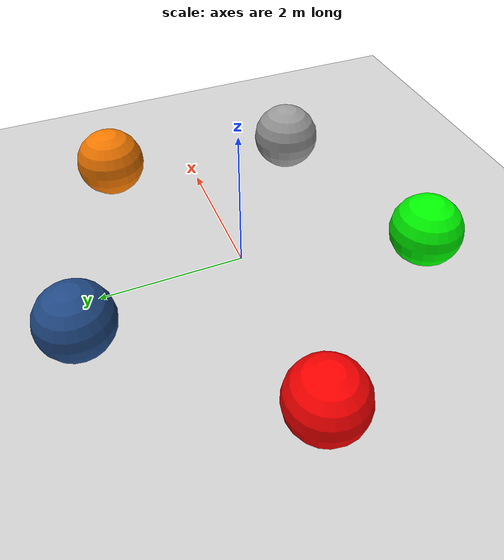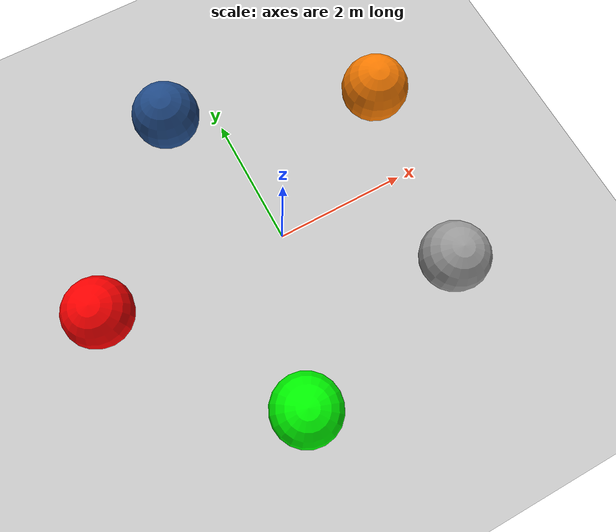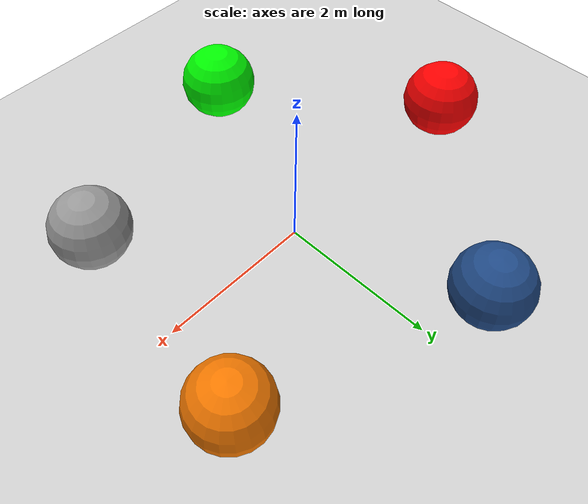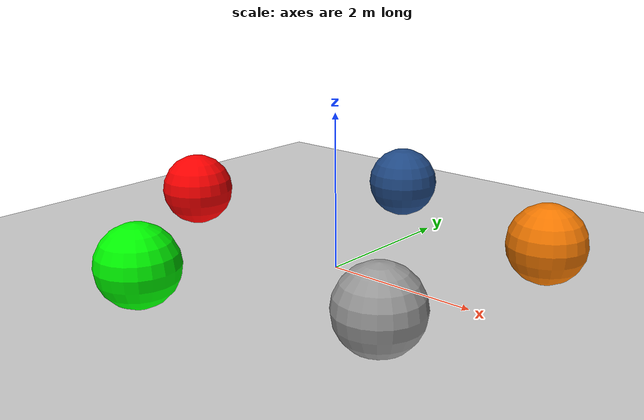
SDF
<sdf version="1.7">
 <world name="default">
  <light name="sun" type="directional">
   <pose>0 0 10 0 -0 0</pose>
   <diffuse>0.8 0.8 0.8 1</diffuse>
   <specular>0.2 0.2 0.2 1</specular>
   <attenuation>
    <range>1000</range>
    <constant>0.9</constant>
    <linear>0.01</linear>
    <quadratic>0.001</quadratic>
   </attenuation>
   <direction>-0.5 0.1 -0.9</direction>
   <spot><inner_angle>0</inner_angle><outer_angle>0</outer_angle><falloff>0</falloff></spot>
  </light>
  <model name="ground_plane">
   <static>1</static>
   <link name="link">
    <collision name="collision">
     <geometry><plane><normal>0 0 1</normal><size>100 100</size></plane></geometry>
     <surface>
      <contact><collide_bitmask>65535</collide_bitmask></contact>
      <friction><ode><mu>100</mu><mu2>50</mu2></ode></friction>
     </surface>
    </collision>
    <visual name="visual">
     <cast_shadows>0</cast_shadows>
     <geometry><plane><normal>0 0 1</normal><size>100 100</size></plane></geometry>
     <material>
      <script><uri>file://media/materials/scripts/gazebo.material</uri><name>Gazebo/Grey</name></script>
     </material>
    </visual>
   </link>
  </model>
  <gravity>0 0 -9.8</gravity>
  <magnetic_field>6e-06 2.3e-05 -4.2e-05</magnetic_field>
  <atmosphere type="adiabatic"/>
  <physics type="ode">
   <max_step_size>0.001</max_step_size>
   <real_time_factor>1</real_time_factor>
   <real_time_update_rate>1000</real_time_update_rate>
  </physics>
  <scene><ambient>0.4 0.4 0.4 1</ambient><background>0.7 0.7 0.7 1</background><shadows>1</shadows></scene>
  <spherical_coordinates>
   <surface_model>EARTH_WGS84</surface_model>
   <latitude_deg>0</latitude_deg>
   <longitude_deg>0</longitude_deg>
   <elevation>0</elevation>
   <heading_deg>0</heading_deg>
  </spherical_coordinates>
  <model name="gazebo_shpere">
   <link name="link">
    <inertial>
     <mass>1</mass>
     <inertia><ixx>0.1</ixx><ixy>0</ixy><ixz>0</ixz><iyy>0.1</iyy><iyz>0</iyz><izz>0.1</izz></inertia>
    </inertial>
    <visual name="visual">
     <geometry><sphere><radius>0.5</radius></sphere></geometry>
     <material>
      <script><name>Gazebo/Grey</name><uri>file://media/materials/scripts/gazebo.material</uri></script>
      <shader type="pixel"><normal_map>__default__</normal_map></shader>
      <diffuse>1 0 0 1</diffuse>
      <ambient>1 0 0 1</ambient>
      <specular>1 0 0 1</specular>
      <emissive>1 0 0 1</emissive>
     </material>
    </visual>
    <collision name="collision">
     <geometry><sphere><radius>0.5</radius></sphere></geometry>
     <surface>
      <friction>
       <ode><mu>1</mu><mu2>1</mu2><fdir1>0 0 0</fdir1><slip1>0</slip1><slip2>0</slip2></ode>
       <torsional>
        <coefficient>1</coefficient>
        <patch_radius>0</patch_radius>
        <surface_radius>0</surface_radius>
        <use_patch_radius>1</use_patch_radius>
        <ode><slip>0</slip></ode>
       </torsional>
      </friction>
      <bounce><restitution_coefficient>0</restitution_coefficient><threshold>1e+06</threshold></bounce>
      <contact>
       <collide_without_contact>0</collide_without_contact>
       <collide_without_contact_bitmask>1</collide_without_contact_bitmask>
       <collide_bitmask>1</collide_bitmask>
       <ode>
        <soft_cfm>0</soft_cfm>
        <soft_erp>0.2</soft_erp>
        <kp>1e+13</kp>
        <kd>1</kd>
        <max_vel>0.01</max_vel>
        <min_depth>0</min_depth>
       </ode>
       <bullet>
        <split_impulse>1</split_impulse>
        <split_impulse_penetration_threshold>-0.01</split_impulse_penetration_threshold>
        <soft_cfm>0</soft_cfm>
        <soft_erp>0.2</soft_erp>
        <kp>1e+13</kp>
        <kd>1</kd>
       </bullet>
      </contact>
     </surface>
    </collision>
   </link>
   <link name="link_0">
    <inertial>
     <mass>1</mass>
     <inertia><ixx>0.1</ixx><ixy>0</ixy><ixz>0</ixz><iyy>0.1</iyy><iyz>0</iyz><izz>0.1</izz></inertia>
    </inertial>
    <pose>1.86873 -2.4341 0 0 -0 0</pose>
    <visual name="visual">
     <geometry><sphere><radius>0.5</radius></sphere></geometry>
     <material>
      <lighting>1</lighting>
      <script><uri>file://media/materials/scripts/gazebo.material</uri><name>Gazebo/Grey</name></script>
      <shader type="pixel"><normal_map>__default__</normal_map></shader>
      <ambient>0 1 0 1</ambient>
      <diffuse>0 1 0 1</diffuse>
      <specular>0 1 0 1</specular>
      <emissive>0 1 0 1</emissive>
     </material>
    </visual>
    <collision name="collision">
     <geometry><sphere><radius>0.5</radius></sphere></geometry>
     <surface>
      <friction>
       <ode><mu>1</mu><mu2>1</mu2><fdir1>0 0 0</fdir1><slip1>0</slip1><slip2>0</slip2></ode>
       <torsional>
        <coefficient>1</coefficient>
        <patch_radius>0</patch_radius>
        <surface_radius>0</surface_radius>
        <use_patch_radius>1</use_patch_radius>
        <ode><slip>0</slip></ode>
       </torsional>
      </friction>
      <bounce><restitution_coefficient>0</restitution_coefficient><threshold>1e+06</threshold></bounce>
      <contact>
       <collide_without_contact>0</collide_without_contact>
       <collide_without_contact_bitmask>1</collide_without_contact_bitmask>
       <collide_bitmask>1</collide_bitmask>
       <ode>
        <soft_cfm>0</soft_cfm>
        <soft_erp>0.2</soft_erp>
        <kp>1e+13</kp>
        <kd>1</kd>
        <max_vel>0.01</max_vel>
        <min_depth>0</min_depth>
       </ode>
       <bullet>
        <split_impulse>1</split_impulse>
        <split_impulse_penetration_threshold>-0.01</split_impulse_penetration_threshold>
        <soft_cfm>0</soft_cfm>
        <soft_erp>0.2</soft_erp>
        <kp>1e+13</kp>
        <kd>1</kd>
       </bullet>
      </contact>
     </surface>
    </collision>
   </link>
   <link name="link_1">
    <inertial>
     <mass>1</mass>
     <inertia><ixx>0.1</ixx><ixy>0</ixy><ixz>0</ixz><iyy>0.1</iyy><iyz>0</iyz><izz>0.1</izz></inertia>
    </inertial>
    <pose>2.05853 2.24782 0 0 -0 0</pose>
    <visual name="visual">
     <geometry><sphere><radius>0.5</radius></sphere></geometry>
     <material>
      <lighting>1</lighting>
      <script><uri>file://media/materials/scripts/gazebo.material</uri><name>Gazebo/Grey</name></script>
      <shader type="pixel"><normal_map>__default__</normal_map></shader>
      <ambient>0.125 0.29 0.529 1</ambient>
      <diffuse>0.125 0.29 0.529 1</diffuse>
      <specular>0.125 0.29 0.529 1</specular>
      <emissive>0.125 0.29 0.529 1</emissive>
     </material>
    </visual>
    <collision name="collision">
     <geometry><sphere><radius>0.5</radius></sphere></geometry>
     <surface>
      <friction>
       <ode><mu>1</mu><mu2>1</mu2><fdir1>0 0 0</fdir1><slip1>0</slip1><slip2>0</slip2></ode>
       <torsional>
        <coefficient>1</coefficient>
        <patch_radius>0</patch_radius>
        <surface_radius>0</surface_radius>
        <use_patch_radius>1</use_patch_radius>
        <ode><slip>0</slip></ode>
       </torsional>
      </friction>
      <bounce><restitution_coefficient>0</restitution_coefficient><threshold>1e+06</threshold></bounce>
      <contact>
       <collide_without_contact>0</collide_without_contact>
       <collide_without_contact_bitmask>1</collide_without_contact_bitmask>
       <collide_bitmask>1</collide_bitmask>
       <ode>
        <soft_cfm>0</soft_cfm>
        <soft_erp>0.2</soft_erp>
        <kp>1e+13</kp>
        <kd>1</kd>
        <max_vel>0.01</max_vel>
        <min_depth>0</min_depth>
       </ode>
       <bullet>
        <split_impulse>1</split_impulse>
        <split_impulse_penetration_threshold>-0.01</split_impulse_penetration_threshold>
        <soft_cfm>0</soft_cfm>
        <soft_erp>0.2</soft_erp>
        <kp>1e+13</kp>
        <kd>1</kd>
       </bullet>
      </contact>
     </surface>
    </collision>
   </link>
   <link name="link_2">
    <inertial>
     <mass>1</mass>
     <inertia><ixx>0.1</ixx><ixy>0</ixy><ixz>0</ixz><iyy>0.1</iyy><iyz>0</iyz><izz>0.1</izz></inertia>
    </inertial>
    <pose>4.66785 -1.59856 0 0 -0 0</pose>
    <visual name="visual">
     <geometry><sphere><radius>0.5</radius></sphere></geometry>
     <material>
      <lighting>1</lighting>
      <script><uri>file://media/materials/scripts/gazebo.material</uri><name>Gazebo/Grey</name></script>
      <shader type="pixel"><normal_map>__default__</normal_map></shader>
      <ambient>0 0 0 1</ambient>
      <diffuse>0 0 0 1</diffuse>
      <specular>0 0 0 1</specular>
      <emissive>0 0 0 1</emissive>
     </material>
    </visual>
    <collision name="collision">
     <geometry><sphere><radius>0.5</radius></sphere></geometry>
     <surface>
      <friction>
       <ode><mu>1</mu><mu2>1</mu2><fdir1>0 0 0</fdir1><slip1>0</slip1><slip2>0</slip2></ode>
       <torsional>
        <coefficient>1</coefficient>
        <patch_radius>0</patch_radius>
        <surface_radius>0</surface_radius>
        <use_patch_radius>1</use_patch_radius>
        <ode><slip>0</slip></ode>
       </torsional>
      </friction>
      <bounce><restitution_coefficient>0</restitution_coefficient><threshold>1e+06</threshold></bounce>
      <contact>
       <collide_without_contact>0</collide_without_contact>
       <collide_without_contact_bitmask>1</collide_without_contact_bitmask>
       <collide_bitmask>1</collide_bitmask>
       <ode>
        <soft_cfm>0</soft_cfm>
        <soft_erp>0.2</soft_erp>
        <kp>1e+13</kp>
        <kd>1</kd>
        <max_vel>0.01</max_vel>
        <min_depth>0</min_depth>
       </ode>
       <bullet>
        <split_impulse>1</split_impulse>
        <split_impulse_penetration_threshold>-0.01</split_impulse_penetration_threshold>
        <soft_cfm>0</soft_cfm>
        <soft_erp>0.2</soft_erp>
        <kp>1e+13</kp>
        <kd>1</kd>
       </bullet>
      </contact>
     </surface>
    </collision>
   </link>
   <link name="link_3">
    <inertial>
     <mass>1</mass>
     <inertia><ixx>0.1</ixx><ixy>0</ixy><ixz>0</ixz><iyy>0.1</iyy><iyz>0</iyz><izz>0.1</izz></inertia>
    </inertial>
    <pose>5.02672 1.18434 0 0 -0 0</pose>
    <visual name="visual">
     <geometry><sphere><radius>0.5</radius></sphere></geometry>
     <material>
      <lighting>1</lighting>
      <script><uri>file://media/materials/scripts/gazebo.material</uri><name>Gazebo/Grey</name></script>
      <shader type="pixel"><normal_map>__default__</normal_map></shader>
      <ambient>0.961 0.475 0 1</ambient>
      <diffuse>0.961 0.475 0 1</diffuse>
      <specular>0.961 0.475 0 1</specular>
      <emissive>0.961 0.475 0 1</emissive>
     </material>
    </visual>
    <collision name="collision">
     <geometry><sphere><radius>0.5</radius></sphere></geometry>
     <surface>
      <friction>
       <ode><mu>1</mu><mu2>1</mu2><fdir1>0 0 0</fdir1><slip1>0</slip1><slip2>0</slip2></ode>
       <torsional>
        <coefficient>1</coefficient>
        <patch_radius>0</patch_radius>
        <surface_radius>0</surface_radius>
        <use_patch_radius>1</use_patch_radius>
        <ode><slip>0</slip></ode>
       </torsional>
      </friction>
      <bounce><restitution_coefficient>0</restitution_coefficient><threshold>1e+06</threshold></bounce>
      <contact>
       <collide_without_contact>0</collide_without_contact>
       <collide_without_contact_bitmask>1</collide_without_contact_bitmask>
       <collide_bitmask>1</collide_bitmask>
       <ode>
        <soft_cfm>0</soft_cfm>
        <soft_erp>0.2</soft_erp>
        <kp>1e+13</kp>
        <kd>1</kd>
        <max_vel>0.01</max_vel>
        <min_depth>0</min_depth>
       </ode>
       <bullet>
        <split_impulse>1</split_impulse>
        <split_impulse_penetration_threshold>-0.01</split_impulse_penetration_threshold>
        <soft_cfm>0</soft_cfm>
        <soft_erp>0.2</soft_erp>
        <kp>1e+13</kp>
        <kd>1</kd>
       </bullet>
      </contact>
     </surface>
    </collision>
   </link>
   <static>0</static>
   <pose>-2.7681 0.091526 0.5 0 -0 0</pose>
  </model>
 </world>
</sdf>
